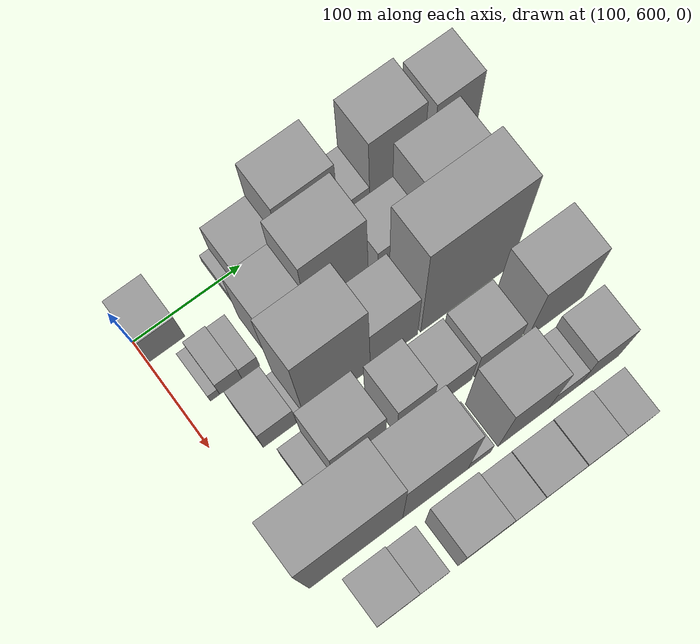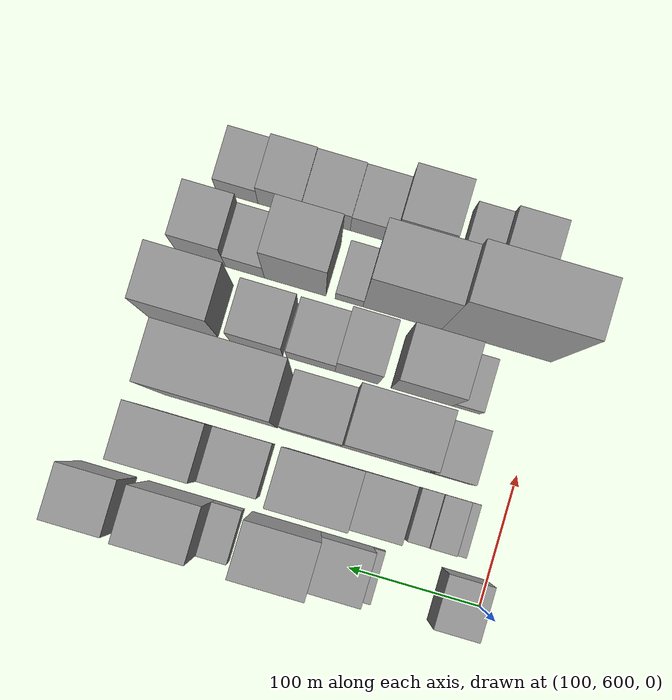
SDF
<sdf version="1.6">
 <world name="default">
  <model name="building_46">
   <static>1</static>
   <pose>100.0000 617.5958 0 0.000000 0.000000 0.000000</pose>
   <link name="link">
    <pose>0 0 33.00 0 0 0</pose>
    <collision name="collision"><geometry><box><size>40.0000 33.8589 66.0000</size></box></geometry></collision>
    <visual name="visual">
     <cast_shadows>0</cast_shadows>
     <geometry><box><size>40.0000 33.8589 66.0000</size></box></geometry>
     <material>
      <script>
       <uri>model://grey_wall/materials/scripts</uri>
       <uri>model://grey_wall/materials/textures</uri>
       <name>vrc/grey_wall</name>
      </script>
     </material>
    </visual>
   </link>
  </model>
  <model name="building_47">
   <static>1</static>
   <pose>100.0000 682.8618 0 0.000000 0.000000 0.000000</pose>
   <link name="link">
    <pose>0 0 9.00 0 0 0</pose>
    <collision name="collision"><geometry><box><size>40.0000 8.8910 18.0000</size></box></geometry></collision>
    <visual name="visual">
     <cast_shadows>0</cast_shadows>
     <geometry><box><size>40.0000 8.8910 18.0000</size></box></geometry>
     <material>
      <script>
       <uri>model://grey_wall/materials/scripts</uri>
       <uri>model://grey_wall/materials/textures</uri>
       <name>vrc/grey_wall</name>
      </script>
     </material>
    </visual>
   </link>
  </model>
  <model name="building_48">
   <static>1</static>
   <pose>100.0000 707.3021 0 0.000000 0.000000 0.000000</pose>
   <link name="link">
    <pose>0 0 37.50 0 0 0</pose>
    <collision name="collision"><geometry><box><size>40.0000 39.9896 75.0000</size></box></geometry></collision>
    <visual name="visual">
     <cast_shadows>0</cast_shadows>
     <geometry><box><size>40.0000 39.9896 75.0000</size></box></geometry>
     <material>
      <script>
       <uri>model://grey_wall/materials/scripts</uri>
       <uri>model://grey_wall/materials/textures</uri>
       <name>vrc/grey_wall</name>
      </script>
     </material>
    </visual>
   </link>
  </model>
  <model name="building_49">
   <static>1</static>
   <pose>100.0000 753.6165 0 0.000000 0.000000 0.000000</pose>
   <link name="link">
    <pose>0 0 73.50 0 0 0</pose>
    <collision name="collision"><geometry><box><size>40.0000 52.6392 147.0000</size></box></geometry></collision>
    <visual name="visual">
     <cast_shadows>0</cast_shadows>
     <geometry><box><size>40.0000 52.6392 147.0000</size></box></geometry>
     <material>
      <script>
       <uri>model://grey_wall/materials/scripts</uri>
       <uri>model://grey_wall/materials/textures</uri>
       <name>vrc/grey_wall</name>
      </script>
     </material>
    </visual>
   </link>
  </model>
  <model name="building_50">
   <static>1</static>
   <pose>100.0000 797.3405 0 0.000000 0.000000 0.000000</pose>
   <link name="link">
    <pose>0 0 21.00 0 0 0</pose>
    <collision name="collision"><geometry><box><size>40.0000 22.8088 42.0000</size></box></geometry></collision>
    <visual name="visual">
     <cast_shadows>0</cast_shadows>
     <geometry><box><size>40.0000 22.8088 42.0000</size></box></geometry>
     <material>
      <script>
       <uri>model://grey_wall/materials/scripts</uri>
       <uri>model://grey_wall/materials/textures</uri>
       <name>vrc/grey_wall</name>
      </script>
     </material>
    </visual>
   </link>
  </model>
  <model name="building_51">
   <static>1</static>
   <pose>100.0000 834.2517 0 0.000000 0.000000 0.000000</pose>
   <link name="link">
    <pose>0 0 69.00 0 0 0</pose>
    <collision name="collision"><geometry><box><size>40.0000 51.0136 138.0000</size></box></geometry></collision>
    <visual name="visual">
     <cast_shadows>0</cast_shadows>
     <geometry><box><size>40.0000 51.0136 138.0000</size></box></geometry>
     <material>
      <script>
       <uri>model://grey_wall/materials/scripts</uri>
       <uri>model://grey_wall/materials/textures</uri>
       <name>vrc/grey_wall</name>
      </script>
     </material>
    </visual>
   </link>
  </model>
  <model name="building_52">
   <static>1</static>
   <pose>100.0000 890.4065 0 0.000000 0.000000 0.000000</pose>
   <link name="link">
    <pose>0 0 58.50 0 0 0</pose>
    <collision name="collision"><geometry><box><size>40.0000 43.2959 117.0000</size></box></geometry></collision>
    <visual name="visual">
     <cast_shadows>0</cast_shadows>
     <geometry><box><size>40.0000 43.2959 117.0000</size></box></geometry>
     <material>
      <script>
       <uri>model://grey_wall/materials/scripts</uri>
       <uri>model://grey_wall/materials/textures</uri>
       <name>vrc/grey_wall</name>
      </script>
     </material>
    </visual>
   </link>
  </model>
  <model name="building_96">
   <static>1</static>
   <pose>152.0000 625.4875 0 0.000000 0.000000 0.000000</pose>
   <link name="link">
    <pose>0 0 10.50 0 0 0</pose>
    <collision name="collision"><geometry><box><size>40.0000 8.5626 21.0000</size></box></geometry></collision>
    <visual name="visual">
     <cast_shadows>0</cast_shadows>
     <geometry><box><size>40.0000 8.5626 21.0000</size></box></geometry>
     <material>
      <script>
       <uri>model://grey_wall/materials/scripts</uri>
       <uri>model://grey_wall/materials/textures</uri>
       <name>vrc/grey_wall</name>
      </script>
     </material>
    </visual>
   </link>
  </model>
  <model name="building_97">
   <static>1</static>
   <pose>152.0000 639.8967 0 0.000000 0.000000 0.000000</pose>
   <link name="link">
    <pose>0 0 19.50 0 0 0</pose>
    <collision name="collision"><geometry><box><size>40.0000 20.2559 39.0000</size></box></geometry></collision>
    <visual name="visual">
     <cast_shadows>0</cast_shadows>
     <geometry><box><size>40.0000 20.2559 39.0000</size></box></geometry>
     <material>
      <script>
       <uri>model://grey_wall/materials/scripts</uri>
       <uri>model://grey_wall/materials/textures</uri>
       <name>vrc/grey_wall</name>
      </script>
     </material>
    </visual>
   </link>
  </model>
  <model name="building_98">
   <static>1</static>
   <pose>152.0000 658.3402 0 0.000000 0.000000 0.000000</pose>
   <link name="link">
    <pose>0 0 16.50 0 0 0</pose>
    <collision name="collision"><geometry><box><size>40.0000 16.6312 33.0000</size></box></geometry></collision>
    <visual name="visual">
     <cast_shadows>0</cast_shadows>
     <geometry><box><size>40.0000 16.6312 33.0000</size></box></geometry>
     <material>
      <script>
       <uri>model://grey_wall/materials/scripts</uri>
       <uri>model://grey_wall/materials/textures</uri>
       <name>vrc/grey_wall</name>
      </script>
     </material>
    </visual>
   </link>
  </model>
  <model name="building_99">
   <static>1</static>
   <pose>152.0000 694.8591 0 0.000000 0.000000 0.000000</pose>
   <link name="link">
    <pose>0 0 63.00 0 0 0</pose>
    <collision name="collision"><geometry><box><size>40.0000 38.4065 126.0000</size></box></geometry></collision>
    <visual name="visual">
     <cast_shadows>0</cast_shadows>
     <geometry><box><size>40.0000 38.4065 126.0000</size></box></geometry>
     <material>
      <script>
       <uri>model://grey_wall/materials/scripts</uri>
       <uri>model://grey_wall/materials/textures</uri>
       <name>vrc/grey_wall</name>
      </script>
     </material>
    </visual>
   </link>
  </model>
  <model name="building_100">
   <static>1</static>
   <pose>152.0000 741.5517 0 0.000000 0.000000 0.000000</pose>
   <link name="link">
    <pose>0 0 90.00 0 0 0</pose>
    <collision name="collision"><geometry><box><size>40.0000 54.9788 180.0000</size></box></geometry></collision>
    <visual name="visual">
     <cast_shadows>0</cast_shadows>
     <geometry><box><size>40.0000 54.9788 180.0000</size></box></geometry>
     <material>
      <script>
       <uri>model://grey_wall/materials/scripts</uri>
       <uri>model://grey_wall/materials/textures</uri>
       <name>vrc/grey_wall</name>
      </script>
     </material>
    </visual>
   </link>
  </model>
  <model name="building_101">
   <static>1</static>
   <pose>152.0000 799.6591 0 0.000000 0.000000 0.000000</pose>
   <link name="link">
    <pose>0 0 37.50 0 0 0</pose>
    <collision name="collision"><geometry><box><size>40.0000 43.2359 75.0000</size></box></geometry></collision>
    <visual name="visual">
     <cast_shadows>0</cast_shadows>
     <geometry><box><size>40.0000 43.2359 75.0000</size></box></geometry>
     <material>
      <script>
       <uri>model://grey_wall/materials/scripts</uri>
       <uri>model://grey_wall/materials/textures</uri>
       <name>vrc/grey_wall</name>
      </script>
     </material>
    </visual>
   </link>
  </model>
  <model name="building_102">
   <static>1</static>
   <pose>152.0000 849.3865 0 0.000000 0.000000 0.000000</pose>
   <link name="link">
    <pose>0 0 73.50 0 0 0</pose>
    <collision name="collision"><geometry><box><size>40.0000 56.2190 147.0000</size></box></geometry></collision>
    <visual name="visual">
     <cast_shadows>0</cast_shadows>
     <geometry><box><size>40.0000 56.2190 147.0000</size></box></geometry>
     <material>
      <script>
       <uri>model://grey_wall/materials/scripts</uri>
       <uri>model://grey_wall/materials/textures</uri>
       <name>vrc/grey_wall</name>
      </script>
     </material>
    </visual>
   </link>
  </model>
  <model name="building_144">
   <static>1</static>
   <pose>204.0000 647.9109 0 0.000000 0.000000 0.000000</pose>
   <link name="link">
    <pose>0 0 30.00 0 0 0</pose>
    <collision name="collision"><geometry><box><size>40.0000 30.8495 60.0000</size></box></geometry></collision>
    <visual name="visual">
     <cast_shadows>0</cast_shadows>
     <geometry><box><size>40.0000 30.8495 60.0000</size></box></geometry>
     <material>
      <script>
       <uri>model://grey_wall/materials/scripts</uri>
       <uri>model://grey_wall/materials/textures</uri>
       <name>vrc/grey_wall</name>
      </script>
     </material>
    </visual>
   </link>
  </model>
  <model name="building_145">
   <static>1</static>
   <pose>204.0000 666.9943 0 0.000000 0.000000 0.000000</pose>
   <link name="link">
    <pose>0 0 7.50 0 0 0</pose>
    <collision name="collision"><geometry><box><size>40.0000 7.3175 15.0000</size></box></geometry></collision>
    <visual name="visual">
     <cast_shadows>0</cast_shadows>
     <geometry><box><size>40.0000 7.3175 15.0000</size></box></geometry>
     <material>
      <script>
       <uri>model://grey_wall/materials/scripts</uri>
       <uri>model://grey_wall/materials/textures</uri>
       <name>vrc/grey_wall</name>
      </script>
     </material>
    </visual>
   </link>
  </model>
  <model name="building_146">
   <static>1</static>
   <pose>204.0000 701.2882 0 0.000000 0.000000 0.000000</pose>
   <link name="link">
    <pose>0 0 97.50 0 0 0</pose>
    <collision name="collision"><geometry><box><size>40.0000 61.2704 195.0000</size></box></geometry></collision>
    <visual name="visual">
     <cast_shadows>0</cast_shadows>
     <geometry><box><size>40.0000 61.2704 195.0000</size></box></geometry>
     <material>
      <script>
       <uri>model://grey_wall/materials/scripts</uri>
       <uri>model://grey_wall/materials/textures</uri>
       <name>vrc/grey_wall</name>
      </script>
     </material>
    </visual>
   </link>
  </model>
  <model name="building_147">
   <static>1</static>
   <pose>204.0000 754.1206 0 0.000000 0.000000 0.000000</pose>
   <link name="link">
    <pose>0 0 58.50 0 0 0</pose>
    <collision name="collision"><geometry><box><size>40.0000 44.3943 117.0000</size></box></geometry></collision>
    <visual name="visual">
     <cast_shadows>0</cast_shadows>
     <geometry><box><size>40.0000 44.3943 117.0000</size></box></geometry>
     <material>
      <script>
       <uri>model://grey_wall/materials/scripts</uri>
       <uri>model://grey_wall/materials/textures</uri>
       <name>vrc/grey_wall</name>
      </script>
     </material>
    </visual>
   </link>
  </model>
  <model name="building_148">
   <static>1</static>
   <pose>204.0000 822.5968 0 0.000000 0.000000 0.000000</pose>
   <link name="link">
    <pose>0 0 111.00 0 0 0</pose>
    <collision name="collision"><geometry><box><size>40.0000 86.5582 222.0000</size></box></geometry></collision>
    <visual name="visual">
     <cast_shadows>0</cast_shadows>
     <geometry><box><size>40.0000 86.5582 222.0000</size></box></geometry>
     <material>
      <script>
       <uri>model://grey_wall/materials/scripts</uri>
       <uri>model://grey_wall/materials/textures</uri>
       <name>vrc/grey_wall</name>
      </script>
     </material>
    </visual>
   </link>
  </model>
  <model name="building_191">
   <static>1</static>
   <pose>256.0000 649.8906 0 0.000000 0.000000 0.000000</pose>
   <link name="link">
    <pose>0 0 18.00 0 0 0</pose>
    <collision name="collision"><geometry><box><size>40.0000 21.1199 36.0000</size></box></geometry></collision>
    <visual name="visual">
     <cast_shadows>0</cast_shadows>
     <geometry><box><size>40.0000 21.1199 36.0000</size></box></geometry>
     <material>
      <script>
       <uri>model://grey_wall/materials/scripts</uri>
       <uri>model://grey_wall/materials/textures</uri>
       <name>vrc/grey_wall</name>
      </script>
     </material>
    </visual>
   </link>
  </model>
  <model name="building_192">
   <static>1</static>
   <pose>256.0000 684.0607 0 0.000000 0.000000 0.000000</pose>
   <link name="link">
    <pose>0 0 63.00 0 0 0</pose>
    <collision name="collision"><geometry><box><size>40.0000 47.2203 126.0000</size></box></geometry></collision>
    <visual name="visual">
     <cast_shadows>0</cast_shadows>
     <geometry><box><size>40.0000 47.2203 126.0000</size></box></geometry>
     <material>
      <script>
       <uri>model://grey_wall/materials/scripts</uri>
       <uri>model://grey_wall/materials/textures</uri>
       <name>vrc/grey_wall</name>
      </script>
     </material>
    </visual>
   </link>
  </model>
  <model name="building_193">
   <static>1</static>
   <pose>256.0000 734.2272 0 0.000000 0.000000 0.000000</pose>
   <link name="link">
    <pose>0 0 54.00 0 0 0</pose>
    <collision name="collision"><geometry><box><size>40.0000 33.1126 108.0000</size></box></geometry></collision>
    <visual name="visual">
     <cast_shadows>0</cast_shadows>
     <geometry><box><size>40.0000 33.1126 108.0000</size></box></geometry>
     <material>
      <script>
       <uri>model://grey_wall/materials/scripts</uri>
       <uri>model://grey_wall/materials/textures</uri>
       <name>vrc/grey_wall</name>
      </script>
     </material>
    </visual>
   </link>
  </model>
  <model name="building_194">
   <static>1</static>
   <pose>256.0000 769.3678 0 0.000000 0.000000 0.000000</pose>
   <link name="link">
    <pose>0 0 34.50 0 0 0</pose>
    <collision name="collision"><geometry><box><size>40.0000 37.1687 69.0000</size></box></geometry></collision>
    <visual name="visual">
     <cast_shadows>0</cast_shadows>
     <geometry><box><size>40.0000 37.1687 69.0000</size></box></geometry>
     <material>
      <script>
       <uri>model://grey_wall/materials/scripts</uri>
       <uri>model://grey_wall/materials/textures</uri>
       <name>vrc/grey_wall</name>
      </script>
     </material>
    </visual>
   </link>
  </model>
  <model name="building_195">
   <static>1</static>
   <pose>256.0000 811.4369 0 0.000000 0.000000 0.000000</pose>
   <link name="link">
    <pose>0 0 39.00 0 0 0</pose>
    <collision name="collision"><geometry><box><size>40.0000 40.9695 78.0000</size></box></geometry></collision>
    <visual name="visual">
     <cast_shadows>0</cast_shadows>
     <geometry><box><size>40.0000 40.9695 78.0000</size></box></geometry>
     <material>
      <script>
       <uri>model://grey_wall/materials/scripts</uri>
       <uri>model://grey_wall/materials/textures</uri>
       <name>vrc/grey_wall</name>
      </script>
     </material>
    </visual>
   </link>
  </model>
  <model name="building_196">
   <static>1</static>
   <pose>256.0000 867.8552 0 0.000000 0.000000 0.000000</pose>
   <link name="link">
    <pose>0 0 70.50 0 0 0</pose>
    <collision name="collision"><geometry><box><size>40.0000 53.8672 141.0000</size></box></geometry></collision>
    <visual name="visual">
     <cast_shadows>0</cast_shadows>
     <geometry><box><size>40.0000 53.8672 141.0000</size></box></geometry>
     <material>
      <script>
       <uri>model://grey_wall/materials/scripts</uri>
       <uri>model://grey_wall/materials/textures</uri>
       <name>vrc/grey_wall</name>
      </script>
     </material>
    </visual>
   </link>
  </model>
  <model name="building_244">
   <static>1</static>
   <pose>308.0000 641.5934 0 0.000000 0.000000 0.000000</pose>
   <link name="link">
    <pose>0 0 106.50 0 0 0</pose>
    <collision name="collision"><geometry><box><size>40.0000 84.9926 213.0000</size></box></geometry></collision>
    <visual name="visual">
     <cast_shadows>0</cast_shadows>
     <geometry><box><size>40.0000 84.9926 213.0000</size></box></geometry>
     <material>
      <script>
       <uri>model://grey_wall/materials/scripts</uri>
       <uri>model://grey_wall/materials/textures</uri>
       <name>vrc/grey_wall</name>
      </script>
     </material>
    </visual>
   </link>
  </model>
  <model name="building_245">
   <static>1</static>
   <pose>308.0000 714.2807 0 0.000000 0.000000 0.000000</pose>
   <link name="link">
    <pose>0 0 93.00 0 0 0</pose>
    <collision name="collision"><geometry><box><size>40.0000 60.3820 186.0000</size></box></geometry></collision>
    <visual name="visual">
     <cast_shadows>0</cast_shadows>
     <geometry><box><size>40.0000 60.3820 186.0000</size></box></geometry>
     <material>
      <script>
       <uri>model://grey_wall/materials/scripts</uri>
       <uri>model://grey_wall/materials/textures</uri>
       <name>vrc/grey_wall</name>
      </script>
     </material>
    </visual>
   </link>
  </model>
  <model name="building_246">
   <static>1</static>
   <pose>308.0000 755.2159 0 0.000000 0.000000 0.000000</pose>
   <link name="link">
    <pose>0 0 19.50 0 0 0</pose>
    <collision name="collision"><geometry><box><size>40.0000 21.4885 39.0000</size></box></geometry></collision>
    <visual name="visual">
     <cast_shadows>0</cast_shadows>
     <geometry><box><size>40.0000 21.4885 39.0000</size></box></geometry>
     <material>
      <script>
       <uri>model://grey_wall/materials/scripts</uri>
       <uri>model://grey_wall/materials/textures</uri>
       <name>vrc/grey_wall</name>
      </script>
     </material>
    </visual>
   </link>
  </model>
  <model name="building_247">
   <static>1</static>
   <pose>308.0000 796.7059 0 0.000000 0.000000 0.000000</pose>
   <link name="link">
    <pose>0 0 73.50 0 0 0</pose>
    <collision name="collision"><geometry><box><size>40.0000 47.4915 147.0000</size></box></geometry></collision>
    <visual name="visual">
     <cast_shadows>0</cast_shadows>
     <geometry><box><size>40.0000 47.4915 147.0000</size></box></geometry>
     <material>
      <script>
       <uri>model://grey_wall/materials/scripts</uri>
       <uri>model://grey_wall/materials/textures</uri>
       <name>vrc/grey_wall</name>
      </script>
     </material>
    </visual>
   </link>
  </model>
  <model name="building_248">
   <static>1</static>
   <pose>308.0000 835.4642 0 0.000000 0.000000 0.000000</pose>
   <link name="link">
    <pose>0 0 30.00 0 0 0</pose>
    <collision name="collision"><geometry><box><size>40.0000 30.0252 60.0000</size></box></geometry></collision>
    <visual name="visual">
     <cast_shadows>0</cast_shadows>
     <geometry><box><size>40.0000 30.0252 60.0000</size></box></geometry>
     <material>
      <script>
       <uri>model://grey_wall/materials/scripts</uri>
       <uri>model://grey_wall/materials/textures</uri>
       <name>vrc/grey_wall</name>
      </script>
     </material>
    </visual>
   </link>
  </model>
  <model name="building_249">
   <static>1</static>
   <pose>308.0000 869.1329 0 0.000000 0.000000 0.000000</pose>
   <link name="link">
    <pose>0 0 48.00 0 0 0</pose>
    <collision name="collision"><geometry><box><size>40.0000 37.3121 96.0000</size></box></geometry></collision>
    <visual name="visual">
     <cast_shadows>0</cast_shadows>
     <geometry><box><size>40.0000 37.3121 96.0000</size></box></geometry>
     <material>
      <script>
       <uri>model://grey_wall/materials/scripts</uri>
       <uri>model://grey_wall/materials/textures</uri>
       <name>vrc/grey_wall</name>
      </script>
     </material>
    </visual>
   </link>
  </model>
  <model name="building_294">
   <static>1</static>
   <pose>360.0000 640.4725 0 0.000000 0.000000 0.000000</pose>
   <link name="link">
    <pose>0 0 36.00 0 0 0</pose>
    <collision name="collision"><geometry><box><size>40.0000 36.9429 72.0000</size></box></geometry></collision>
    <visual name="visual">
     <cast_shadows>0</cast_shadows>
     <geometry><box><size>40.0000 36.9429 72.0000</size></box></geometry>
     <material>
      <script>
       <uri>model://grey_wall/materials/scripts</uri>
       <uri>model://grey_wall/materials/textures</uri>
       <name>vrc/grey_wall</name>
      </script>
     </material>
    </visual>
   </link>
  </model>
  <model name="building_295">
   <static>1</static>
   <pose>360.0000 672.3618 0 0.000000 0.000000 0.000000</pose>
   <link name="link">
    <pose>0 0 22.50 0 0 0</pose>
    <collision name="collision"><geometry><box><size>40.0000 26.8357 45.0000</size></box></geometry></collision>
    <visual name="visual">
     <cast_shadows>0</cast_shadows>
     <geometry><box><size>40.0000 26.8357 45.0000</size></box></geometry>
     <material>
      <script>
       <uri>model://grey_wall/materials/scripts</uri>
       <uri>model://grey_wall/materials/textures</uri>
       <name>vrc/grey_wall</name>
      </script>
     </material>
    </visual>
   </link>
  </model>
  <model name="building_296">
   <static>1</static>
   <pose>360.0000 715.9449 0 0.000000 0.000000 0.000000</pose>
   <link name="link">
    <pose>0 0 58.50 0 0 0</pose>
    <collision name="collision"><geometry><box><size>40.0000 40.3304 117.0000</size></box></geometry></collision>
    <visual name="visual">
     <cast_shadows>0</cast_shadows>
     <geometry><box><size>40.0000 40.3304 117.0000</size></box></geometry>
     <material>
      <script>
       <uri>model://grey_wall/materials/scripts</uri>
       <uri>model://grey_wall/materials/textures</uri>
       <name>vrc/grey_wall</name>
      </script>
     </material>
    </visual>
   </link>
  </model>
  <model name="building_297">
   <static>1</static>
   <pose>360.0000 752.8148 0 0.000000 0.000000 0.000000</pose>
   <link name="link">
    <pose>0 0 31.50 0 0 0</pose>
    <collision name="collision"><geometry><box><size>40.0000 33.4095 63.0000</size></box></geometry></collision>
    <visual name="visual">
     <cast_shadows>0</cast_shadows>
     <geometry><box><size>40.0000 33.4095 63.0000</size></box></geometry>
     <material>
      <script>
       <uri>model://grey_wall/materials/scripts</uri>
       <uri>model://grey_wall/materials/textures</uri>
       <name>vrc/grey_wall</name>
      </script>
     </material>
    </visual>
   </link>
  </model>
  <model name="building_298">
   <static>1</static>
   <pose>360.0000 787.9050 0 0.000000 0.000000 0.000000</pose>
   <link name="link">
    <pose>0 0 33.00 0 0 0</pose>
    <collision name="collision"><geometry><box><size>40.0000 36.7709 66.0000</size></box></geometry></collision>
    <visual name="visual">
     <cast_shadows>0</cast_shadows>
     <geometry><box><size>40.0000 36.7709 66.0000</size></box></geometry>
     <material>
      <script>
       <uri>model://grey_wall/materials/scripts</uri>
       <uri>model://grey_wall/materials/textures</uri>
       <name>vrc/grey_wall</name>
      </script>
     </material>
    </visual>
   </link>
  </model>
  <model name="building_299">
   <static>1</static>
   <pose>360.0000 823.5811 0 0.000000 0.000000 0.000000</pose>
   <link name="link">
    <pose>0 0 34.50 0 0 0</pose>
    <collision name="collision"><geometry><box><size>40.0000 34.5813 69.0000</size></box></geometry></collision>
    <visual name="visual">
     <cast_shadows>0</cast_shadows>
     <geometry><box><size>40.0000 34.5813 69.0000</size></box></geometry>
     <material>
      <script>
       <uri>model://grey_wall/materials/scripts</uri>
       <uri>model://grey_wall/materials/textures</uri>
       <name>vrc/grey_wall</name>
      </script>
     </material>
    </visual>
   </link>
  </model>
  <model name="building_300">
   <static>1</static>
   <pose>360.0000 856.9938 0 0.000000 0.000000 0.000000</pose>
   <link name="link">
    <pose>0 0 27.00 0 0 0</pose>
    <collision name="collision"><geometry><box><size>40.0000 32.2441 54.0000</size></box></geometry></collision>
    <visual name="visual">
     <cast_shadows>0</cast_shadows>
     <geometry><box><size>40.0000 32.2441 54.0000</size></box></geometry>
     <material>
      <script>
       <uri>model://grey_wall/materials/scripts</uri>
       <uri>model://grey_wall/materials/textures</uri>
       <name>vrc/grey_wall</name>
      </script>
     </material>
    </visual>
   </link>
  </model>
 </world>
</sdf>
